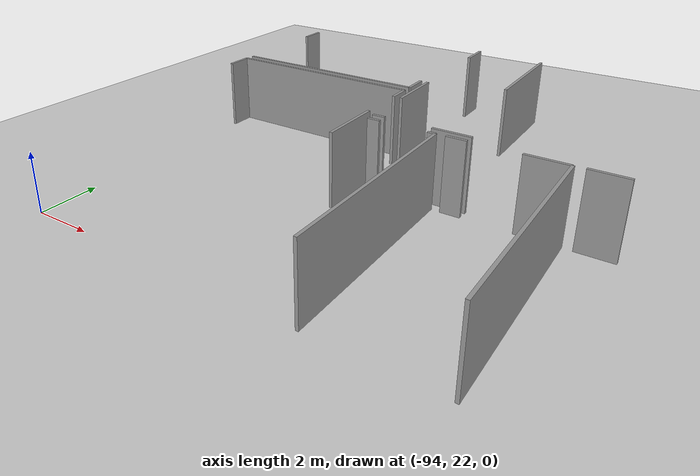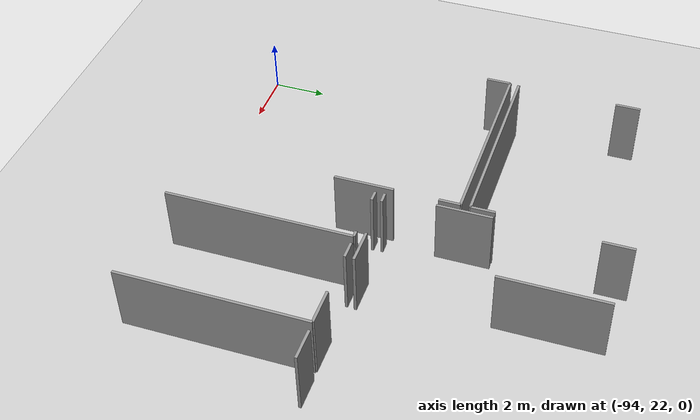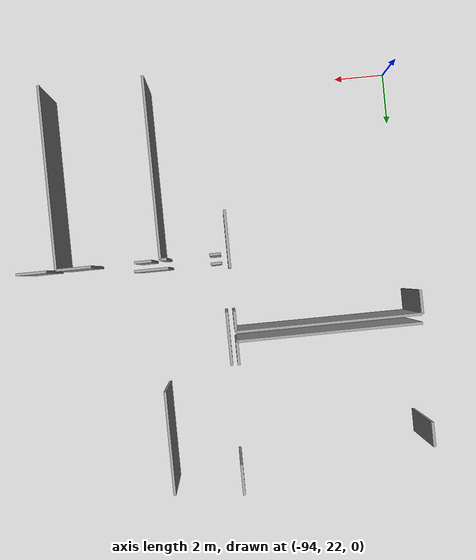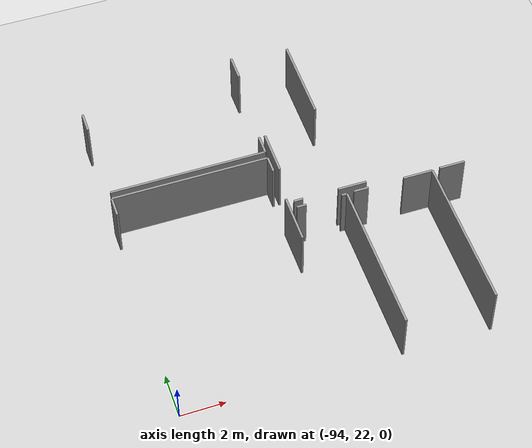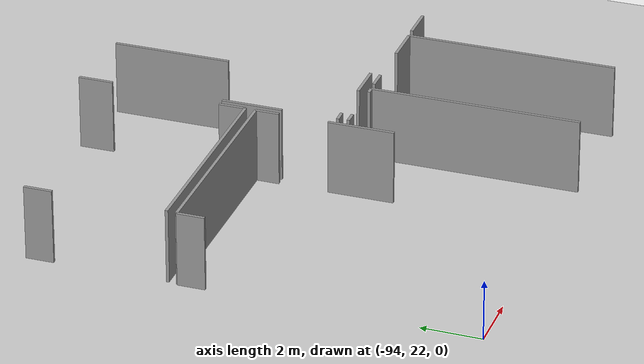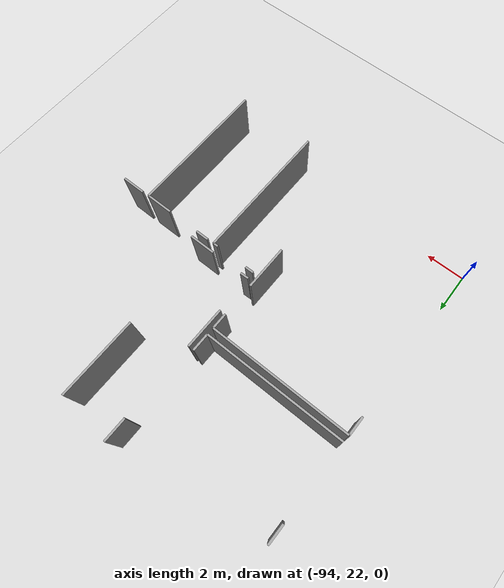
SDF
<sdf version="1.6">
 <world name="default">
  <model name="ground_plane">
   <static>1</static>
   <link name="link">
    <collision name="collision">
     <geometry><plane><normal>0 0 1</normal><size>100 100</size></plane></geometry>
     <surface><friction><ode><mu>100</mu><mu2>50</mu2></ode></friction></surface>
    </collision>
    <visual name="visual">
     <cast_shadows>0</cast_shadows>
     <geometry><plane><normal>0 0 1</normal><size>100 100</size></plane></geometry>
     <material>
      <script><uri>file://media/materials/scripts/gazebo.material</uri><name>Gazebo/Grey</name></script>
     </material>
    </visual>
   </link>
  </model>
  <model name="0510035741_A_40_1_104">
   <static>1</static>
   <link name="Wall_29">
    <collision name="Wall_29_Collision">
     <geometry><box><size>0.926333970447 0.1 2.5</size></box></geometry>
     <pose>0.463166985224 0 1.25 0 0 0</pose>
    </collision>
    <visual name="Wall_29_Visual">
     <pose>0.463166985224 0 1.25 0 0 0</pose>
     <geometry><box><size>0.926333970447 0.1 2.5</size></box></geometry>
     <material>
      <script><uri>file://media/materials/scripts/gazebo.material</uri><name>Gazebo/Grey</name></script>
      <ambient>1 1 1 1</ambient>
     </material>
    </visual>
    <pose>0.0297178707272 -13.8330338263 0 0 0 1.57079632679</pose>
   </link>
   <link name="Wall_31">
    <collision name="Wall_31_Collision">
     <geometry><box><size>0.883916154965 0.1 2.5</size></box></geometry>
     <pose>0.441958077482 0 1.25 0 0 0</pose>
    </collision>
    <visual name="Wall_31_Visual">
     <pose>0.441958077482 0 1.25 0 0 0</pose>
     <geometry><box><size>0.883916154965 0.1 2.5</size></box></geometry>
     <material>
      <script><uri>file://media/materials/scripts/gazebo.material</uri><name>Gazebo/Grey</name></script>
      <ambient>1 1 1 1</ambient>
     </material>
    </visual>
    <pose>7.03018141871 -16.669185489 0 0 0 -1.57079632679</pose>
   </link>
   <link name="Wall_32">
    <collision name="Wall_32_Collision">
     <geometry><box><size>7.00047904908 0.1 2.5</size></box></geometry>
     <pose>3.50023952454 0 1.25 0 0 0</pose>
    </collision>
    <visual name="Wall_32_Visual">
     <pose>3.50023952454 0 1.25 0 0 0</pose>
     <geometry><box><size>7.00047904908 0.1 2.5</size></box></geometry>
     <material>
      <script><uri>file://media/materials/scripts/gazebo.material</uri><name>Gazebo/Grey</name></script>
      <ambient>1 1 1 1</ambient>
     </material>
    </visual>
    <pose>7.03018141871 -17.553101644 0 0 0 -3.13948823378</pose>
   </link>
   <link name="Wall_33">
    <collision name="Wall_33_Collision">
     <geometry><box><size>0.909316044475 0.1 2.5</size></box></geometry>
     <pose>0.454658022238 0 1.25 0 0 0</pose>
    </collision>
    <visual name="Wall_33_Visual">
     <pose>0.454658022238 0 1.25 0 0 0</pose>
     <geometry><box><size>0.909316044475 0.1 2.5</size></box></geometry>
     <material>
      <script><uri>file://media/materials/scripts/gazebo.material</uri><name>Gazebo/Grey</name></script>
      <ambient>1 1 1 1</ambient>
     </material>
    </visual>
    <pose>0.0 -18.8159841505 0 0 0 1.57079632679</pose>
   </link>
   <link name="Wall_34">
    <collision name="Wall_34_Collision">
     <geometry><box><size>7.02129145738 0.1 2.5</size></box></geometry>
     <pose>3.51064572869 0 1.25 0 0 0</pose>
    </collision>
    <visual name="Wall_34_Visual">
     <pose>3.51064572869 0 1.25 0 0 0</pose>
     <geometry><box><size>7.02129145738 0.1 2.5</size></box></geometry>
     <material>
      <script><uri>file://media/materials/scripts/gazebo.material</uri><name>Gazebo/Grey</name></script>
      <ambient>1 1 1 1</ambient>
     </material>
    </visual>
    <pose>0.0 -17.906668106 0 0 0 0.0</pose>
   </link>
   <link name="Wall_35">
    <collision name="Wall_35_Collision">
     <geometry><box><size>0.783078593608 0.1 2.5</size></box></geometry>
     <pose>0.391539296804 0 1.25 0 0 0</pose>
    </collision>
    <visual name="Wall_35_Visual">
     <pose>0.391539296804 0 1.25 0 0 0</pose>
     <geometry><box><size>0.783078593608 0.1 2.5</size></box></geometry>
     <material>
      <script><uri>file://media/materials/scripts/gazebo.material</uri><name>Gazebo/Grey</name></script>
      <ambient>1 1 1 1</ambient>
     </material>
    </visual>
    <pose>7.02129145738 -17.906668106 0 0 0 -1.57079632679</pose>
   </link>
   <link name="Wall_36">
    <collision name="Wall_36_Collision">
     <geometry><box><size>2.19277246144 0.1 2.5</size></box></geometry>
     <pose>1.09638623072 0 1.25 0 0 0</pose>
    </collision>
    <visual name="Wall_36_Visual">
     <pose>1.09638623072 0 1.25 0 0 0</pose>
     <geometry><box><size>2.19277246144 0.1 2.5</size></box></geometry>
     <material>
      <script><uri>file://media/materials/scripts/gazebo.material</uri><name>Gazebo/Grey</name></script>
      <ambient>1 1 1 1</ambient>
     </material>
    </visual>
    <pose>7.02129145738 -20.3206736051 0 0 0 -1.57079632679</pose>
   </link>
   <link name="Wall_42">
    <collision name="Wall_42_Collision">
     <geometry><box><size>0.416812186867 0.1 2.5</size></box></geometry>
     <pose>0.208406093433 0 1.25 0 0 0</pose>
    </collision>
    <visual name="Wall_42_Visual">
     <pose>0.208406093433 0 1.25 0 0 0</pose>
     <geometry><box><size>0.416812186867 0.1 2.5</size></box></geometry>
     <material>
      <script><uri>file://media/materials/scripts/gazebo.material</uri><name>Gazebo/Grey</name></script>
      <ambient>1 1 1 1</ambient>
     </material>
    </visual>
    <pose>7.32431213924 -20.8870911412 0 0 0 0.0</pose>
   </link>
   <link name="Wall_43">
    <collision name="Wall_43_Collision">
     <geometry><box><size>0.252474901734 0.1 2.5</size></box></geometry>
     <pose>0.126237450867 0 1.25 0 0 0</pose>
    </collision>
    <visual name="Wall_43_Visual">
     <pose>0.126237450867 0 1.25 0 0 0</pose>
     <geometry><box><size>0.252474901734 0.1 2.5</size></box></geometry>
     <material>
      <script><uri>file://media/materials/scripts/gazebo.material</uri><name>Gazebo/Grey</name></script>
      <ambient>1 1 1 1</ambient>
     </material>
    </visual>
    <pose>9.3448733498 -20.8870911412 0 0 0 0.0</pose>
   </link>
   <link name="Wall_44">
    <collision name="Wall_44_Collision">
     <geometry><box><size>6.9270578673 0.1 2.5</size></box></geometry>
     <pose>3.46352893365 0 1.25 0 0 0</pose>
    </collision>
    <visual name="Wall_44_Visual">
     <pose>3.46352893365 0 1.25 0 0 0</pose>
     <geometry><box><size>6.9270578673 0.1 2.5</size></box></geometry>
     <material>
      <script><uri>file://media/materials/scripts/gazebo.material</uri><name>Gazebo/Grey</name></script>
      <ambient>1 1 1 1</ambient>
     </material>
    </visual>
    <pose>9.59734825154 -20.8870911412 0 0 0 -1.57079632679</pose>
   </link>
   <link name="Wall_47">
    <collision name="Wall_47_Collision">
     <geometry><box><size>0.660905125063 0.1 2.5</size></box></geometry>
     <pose>0.330452562531 0 1.25 0 0 0</pose>
    </collision>
    <visual name="Wall_47_Visual">
     <pose>0.330452562531 0 1.25 0 0 0</pose>
     <geometry><box><size>0.660905125063 0.1 2.5</size></box></geometry>
     <material>
      <script><uri>file://media/materials/scripts/gazebo.material</uri><name>Gazebo/Grey</name></script>
      <ambient>1 1 1 1</ambient>
     </material>
    </visual>
    <pose>9.91662486268 -20.8655012351 0 0 0 0.0</pose>
   </link>
   <link name="Wall_48">
    <collision name="Wall_48_Collision">
     <geometry><box><size>1.33959017278 0.1 2.5</size></box></geometry>
     <pose>0.669795086391 0 1.25 0 0 0</pose>
    </collision>
    <visual name="Wall_48_Visual">
     <pose>0.669795086391 0 1.25 0 0 0</pose>
     <geometry><box><size>1.33959017278 0.1 2.5</size></box></geometry>
     <material>
      <script><uri>file://media/materials/scripts/gazebo.material</uri><name>Gazebo/Grey</name></script>
      <ambient>1 1 1 1</ambient>
     </material>
    </visual>
    <pose>12.1916929661 -20.8655012351 0 0 0 0.0</pose>
   </link>
   <link name="Wall_49">
    <collision name="Wall_49_Collision">
     <geometry><box><size>6.9633797093 0.1 2.5</size></box></geometry>
     <pose>3.48168985465 0 1.25 0 0 0</pose>
    </collision>
    <visual name="Wall_49_Visual">
     <pose>3.48168985465 0 1.25 0 0 0</pose>
     <geometry><box><size>6.9633797093 0.1 2.5</size></box></geometry>
     <material>
      <script><uri>file://media/materials/scripts/gazebo.material</uri><name>Gazebo/Grey</name></script>
      <ambient>1 1 1 1</ambient>
     </material>
    </visual>
    <pose>13.5312831389 -20.8655012351 0 0 0 -1.57079632679</pose>
   </link>
   <link name="Wall_52">
    <collision name="Wall_52_Collision">
     <geometry><box><size>1.16102894952 0.1 2.5</size></box></geometry>
     <pose>0.580514474762 0 1.25 0 0 0</pose>
    </collision>
    <visual name="Wall_52_Visual">
     <pose>0.580514474762 0 1.25 0 0 0</pose>
     <geometry><box><size>1.16102894952 0.1 2.5</size></box></geometry>
     <material>
      <script><uri>file://media/materials/scripts/gazebo.material</uri><name>Gazebo/Grey</name></script>
      <ambient>1 1 1 1</ambient>
     </material>
    </visual>
    <pose>13.8746896451 -20.8436573301 0 0 0 0.0</pose>
   </link>
   <link name="Wall_58">
    <collision name="Wall_58_Collision">
     <geometry><box><size>3.9019310266 0.1 2.5</size></box></geometry>
     <pose>1.9509655133 0 1.25 0 0 0</pose>
    </collision>
    <visual name="Wall_58_Visual">
     <pose>1.9509655133 0 1.25 0 0 0</pose>
     <geometry><box><size>3.9019310266 0.1 2.5</size></box></geometry>
     <material>
      <script><uri>file://media/materials/scripts/gazebo.material</uri><name>Gazebo/Grey</name></script>
      <ambient>1 1 1 1</ambient>
     </material>
    </visual>
    <pose>9.89909893892 -15.9366526756 0 0 0 1.57079632679</pose>
   </link>
   <link name="Wall_75">
    <collision name="Wall_75_Collision">
     <geometry><box><size>2.02056121056 0.1 2.5</size></box></geometry>
     <pose>1.01028060528 0 1.25 0 0 0</pose>
    </collision>
    <visual name="Wall_75_Visual">
     <pose>1.01028060528 0 1.25 0 0 0</pose>
     <geometry><box><size>2.02056121056 0.1 2.5</size></box></geometry>
     <material>
      <script><uri>file://media/materials/scripts/gazebo.material</uri><name>Gazebo/Grey</name></script>
      <ambient>1 1 1 1</ambient>
     </material>
    </visual>
    <pose>7.30500822321 -18.6897466996 0 0 0 1.57079632679</pose>
   </link>
   <link name="Wall_76">
    <collision name="Wall_76_Collision">
     <geometry><box><size>1.14909100145 0.1 2.5</size></box></geometry>
     <pose>0.574545500727 0 1.25 0 0 0</pose>
    </collision>
    <visual name="Wall_76_Visual">
     <pose>0.574545500727 0 1.25 0 0 0</pose>
     <geometry><box><size>1.14909100145 0.1 2.5</size></box></geometry>
     <material>
      <script><uri>file://media/materials/scripts/gazebo.material</uri><name>Gazebo/Grey</name></script>
      <ambient>1 1 1 1</ambient>
     </material>
    </visual>
    <pose>7.30500822321 -12.9437836945 0 0 0 1.57079632679</pose>
   </link>
   <link name="Wall_89">
    <collision name="Wall_89_Collision">
     <geometry><box><size>1.28472641144 0.1 2.5</size></box></geometry>
     <pose>0.64236320572 0 1.25 0 0 0</pose>
    </collision>
    <visual name="Wall_89_Visual">
     <pose>0.64236320572 0 1.25 0 0 0</pose>
     <geometry><box><size>1.28472641144 0.1 2.5</size></box></geometry>
     <material>
      <script><uri>file://media/materials/scripts/gazebo.material</uri><name>Gazebo/Grey</name></script>
      <ambient>1 1 1 1</ambient>
     </material>
    </visual>
    <pose>10.5993738927 -20.5360646681 0 0 0 3.14159265359</pose>
   </link>
   <link name="Wall_90">
    <collision name="Wall_90_Collision">
     <geometry><box><size>0.415946360217 0.1 2.5</size></box></geometry>
     <pose>0.207973180108 0 1.25 0 0 0</pose>
    </collision>
    <visual name="Wall_90_Visual">
     <pose>0.207973180108 0 1.25 0 0 0</pose>
     <geometry><box><size>0.415946360217 0.1 2.5</size></box></geometry>
     <material>
      <script><uri>file://media/materials/scripts/gazebo.material</uri><name>Gazebo/Grey</name></script>
      <ambient>1 1 1 1</ambient>
     </material>
    </visual>
    <pose>7.7208044145 -20.5360646681 0 0 0 -3.1147206874</pose>
   </link>
   <pose>-93.95 49.6727497285 0 0 0 0</pose>
  </model>
 </world>
</sdf>
